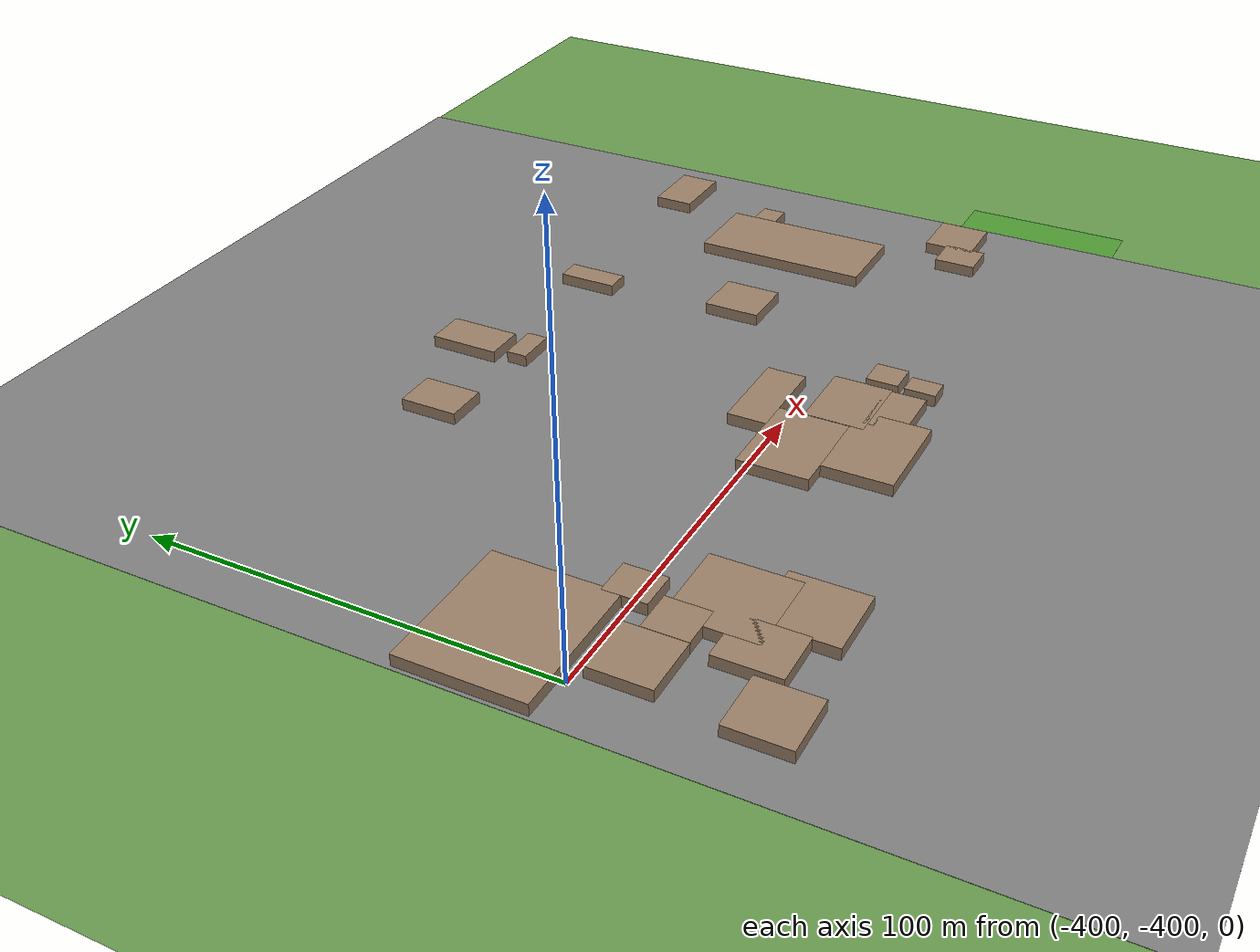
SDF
<sdf version="1.9">
 <world name="kimje_farmland">
  <model name="ground_plane">
   <static>true</static>
   <link name="link">
    <collision name="collision">
     <geometry><plane><normal>0 0 1</normal><size>2000 2000</size></plane></geometry>
    </collision>
    <visual name="visual">
     <geometry><plane><normal>0 0 1</normal><size>2000 2000</size></plane></geometry>
     <material><ambient>0.4 0.6 0.3 1</ambient><diffuse>0.4 0.6 0.3 1</diffuse></material>
    </visual>
   </link>
  </model>
  <model name="osm_168">
   <static>true</static>
   <pose>-297.12 -324.64 0.040 0 0 0</pose>
   <link name="link">
    <collision name="collision"><geometry><box><size>229.44 869.35 0.080</size></box></geometry></collision>
    <visual name="visual">
     <geometry><box><size>229.44 869.35 0.080</size></box></geometry>
     <material><ambient>0.5 0.5 0.5 1</ambient><diffuse>0.5 0.5 0.5 1</diffuse></material>
    </visual>
   </link>
  </model>
  <model name="osm_695">
   <static>true</static>
   <pose>-392.92 -383.28 1.500 0 0 0</pose>
   <link name="link">
    <collision name="collision"><geometry><box><size>36.00 30.48 3.000</size></box></geometry></collision>
    <visual name="visual">
     <geometry><box><size>36.00 30.48 3.000</size></box></geometry>
     <material><ambient>0.6 0.5 0.4 1</ambient><diffuse>0.6 0.5 0.4 1</diffuse></material>
    </visual>
   </link>
  </model>
  <model name="osm_716">
   <static>true</static>
   <pose>-389.92 -409.60 1.500 0 0 0</pose>
   <link name="link">
    <collision name="collision"><geometry><box><size>14.85 14.93 3.000</size></box></geometry></collision>
    <visual name="visual">
     <geometry><box><size>14.85 14.93 3.000</size></box></geometry>
     <material><ambient>0.6 0.5 0.4 1</ambient><diffuse>0.6 0.5 0.4 1</diffuse></material>
    </visual>
   </link>
  </model>
  <model name="osm_718">
   <static>true</static>
   <pose>-392.61 -438.90 1.500 0 0 0</pose>
   <link name="link">
    <collision name="collision"><geometry><box><size>14.83 14.95 3.000</size></box></geometry></collision>
    <visual name="visual">
     <geometry><box><size>14.83 14.95 3.000</size></box></geometry>
     <material><ambient>0.6 0.5 0.4 1</ambient><diffuse>0.6 0.5 0.4 1</diffuse></material>
    </visual>
   </link>
  </model>
  <model name="osm_733">
   <static>true</static>
   <pose>-329.73 -325.42 1.500 0 0 0</pose>
   <link name="link">
    <collision name="collision"><geometry><box><size>10.65 14.53 3.000</size></box></geometry></collision>
    <visual name="visual">
     <geometry><box><size>10.65 14.53 3.000</size></box></geometry>
     <material><ambient>0.6 0.5 0.4 1</ambient><diffuse>0.6 0.5 0.4 1</diffuse></material>
    </visual>
   </link>
  </model>
  <model name="osm_736">
   <static>true</static>
   <pose>-301.90 -317.08 1.500 0 0 0</pose>
   <link name="link">
    <collision name="collision"><geometry><box><size>10.11 17.50 3.000</size></box></geometry></collision>
    <visual name="visual">
     <geometry><box><size>10.11 17.50 3.000</size></box></geometry>
     <material><ambient>0.6 0.5 0.4 1</ambient><diffuse>0.6 0.5 0.4 1</diffuse></material>
    </visual>
   </link>
  </model>
  <model name="osm_737">
   <static>true</static>
   <pose>-300.04 -331.14 1.500 0 0 0</pose>
   <link name="link">
    <collision name="collision"><geometry><box><size>10.21 5.29 3.000</size></box></geometry></collision>
    <visual name="visual">
     <geometry><box><size>10.21 5.29 3.000</size></box></geometry>
     <material><ambient>0.6 0.5 0.4 1</ambient><diffuse>0.6 0.5 0.4 1</diffuse></material>
    </visual>
   </link>
  </model>
  <model name="osm_745">
   <static>true</static>
   <pose>-260.58 -327.66 1.500 0 0 0</pose>
   <link name="link">
    <collision name="collision"><geometry><box><size>6.35 14.93 3.000</size></box></geometry></collision>
    <visual name="visual">
     <geometry><box><size>6.35 14.93 3.000</size></box></geometry>
     <material><ambient>0.6 0.5 0.4 1</ambient><diffuse>0.6 0.5 0.4 1</diffuse></material>
    </visual>
   </link>
  </model>
  <model name="osm_762">
   <static>true</static>
   <pose>-201.12 -325.95 1.500 0 0 0</pose>
   <link name="link">
    <collision name="collision"><geometry><box><size>17.20 10.41 3.000</size></box></geometry></collision>
    <visual name="visual">
     <geometry><box><size>17.20 10.41 3.000</size></box></geometry>
     <material><ambient>0.6 0.5 0.4 1</ambient><diffuse>0.6 0.5 0.4 1</diffuse></material>
    </visual>
   </link>
  </model>
  <model name="osm_817">
   <static>true</static>
   <pose>-207.87 -354.67 1.500 0 0 0</pose>
   <link name="link">
    <collision name="collision"><geometry><box><size>10.49 6.21 3.000</size></box></geometry></collision>
    <visual name="visual">
     <geometry><box><size>10.49 6.21 3.000</size></box></geometry>
     <material><ambient>0.6 0.5 0.4 1</ambient><diffuse>0.6 0.5 0.4 1</diffuse></material>
    </visual>
   </link>
  </model>
  <model name="osm_818">
   <static>true</static>
   <pose>-219.56 -368.08 1.500 0 0 0</pose>
   <link name="link">
    <collision name="collision"><geometry><box><size>21.05 44.85 3.000</size></box></geometry></collision>
    <visual name="visual">
     <geometry><box><size>21.05 44.85 3.000</size></box></geometry>
     <material><ambient>0.6 0.5 0.4 1</ambient><diffuse>0.6 0.5 0.4 1</diffuse></material>
    </visual>
   </link>
  </model>
  <model name="osm_819">
   <static>true</static>
   <pose>-254.19 -368.42 1.500 0 0 0</pose>
   <link name="link">
    <collision name="collision"><geometry><box><size>13.61 14.37 3.000</size></box></geometry></collision>
    <visual name="visual">
     <geometry><box><size>13.61 14.37 3.000</size></box></geometry>
     <material><ambient>0.6 0.5 0.4 1</ambient><diffuse>0.6 0.5 0.4 1</diffuse></material>
    </visual>
   </link>
  </model>
  <model name="osm_820">
   <static>true</static>
   <pose>-294.58 -393.59 1.500 0 0 0</pose>
   <link name="link">
    <collision name="collision"><geometry><box><size>23.09 9.81 3.000</size></box></geometry></collision>
    <visual name="visual">
     <geometry><box><size>23.09 9.81 3.000</size></box></geometry>
     <material><ambient>0.6 0.5 0.4 1</ambient><diffuse>0.6 0.5 0.4 1</diffuse></material>
    </visual>
   </link>
  </model>
  <model name="osm_821">
   <static>true</static>
   <pose>-371.14 -399.29 1.500 0 0 0</pose>
   <link name="link">
    <collision name="collision"><geometry><box><size>9.50 10.53 3.000</size></box></geometry></collision>
    <visual name="visual">
     <geometry><box><size>9.50 10.53 3.000</size></box></geometry>
     <material><ambient>0.6 0.5 0.4 1</ambient><diffuse>0.6 0.5 0.4 1</diffuse></material>
    </visual>
   </link>
  </model>
  <model name="osm_822">
   <static>true</static>
   <pose>-377.22 -411.61 1.500 0 0 0</pose>
   <link name="link">
    <collision name="collision"><geometry><box><size>10.46 10.83 3.000</size></box></geometry></collision>
    <visual name="visual">
     <geometry><box><size>10.46 10.83 3.000</size></box></geometry>
     <material><ambient>0.6 0.5 0.4 1</ambient><diffuse>0.6 0.5 0.4 1</diffuse></material>
    </visual>
   </link>
  </model>
  <model name="osm_823">
   <static>true</static>
   <pose>-366.35 -418.75 1.500 0 0 0</pose>
   <link name="link">
    <collision name="collision"><geometry><box><size>21.32 21.31 3.000</size></box></geometry></collision>
    <visual name="visual">
     <geometry><box><size>21.32 21.31 3.000</size></box></geometry>
     <material><ambient>0.6 0.5 0.4 1</ambient><diffuse>0.6 0.5 0.4 1</diffuse></material>
    </visual>
   </link>
  </model>
  <model name="osm_824">
   <static>true</static>
   <pose>-377.09 -429.41 1.500 0 0 0</pose>
   <link name="link">
    <collision name="collision"><geometry><box><size>13.48 15.66 3.000</size></box></geometry></collision>
    <visual name="visual">
     <geometry><box><size>13.48 15.66 3.000</size></box></geometry>
     <material><ambient>0.6 0.5 0.4 1</ambient><diffuse>0.6 0.5 0.4 1</diffuse></material>
    </visual>
   </link>
  </model>
  <model name="osm_826">
   <static>true</static>
   <pose>-362.28 -434.08 1.500 0 0 0</pose>
   <link name="link">
    <collision name="collision"><geometry><box><size>17.43 18.52 3.000</size></box></geometry></collision>
    <visual name="visual">
     <geometry><box><size>17.43 18.52 3.000</size></box></geometry>
     <material><ambient>0.6 0.5 0.4 1</ambient><diffuse>0.6 0.5 0.4 1</diffuse></material>
    </visual>
   </link>
  </model>
  <model name="osm_830">
   <static>true</static>
   <pose>-310.49 -407.20 1.500 0 0 0</pose>
   <link name="link">
    <collision name="collision"><geometry><box><size>23.97 17.62 3.000</size></box></geometry></collision>
    <visual name="visual">
     <geometry><box><size>23.97 17.62 3.000</size></box></geometry>
     <material><ambient>0.6 0.5 0.4 1</ambient><diffuse>0.6 0.5 0.4 1</diffuse></material>
    </visual>
   </link>
  </model>
  <model name="osm_831">
   <static>true</static>
   <pose>-288.90 -411.93 1.500 0 0 0</pose>
   <link name="link">
    <collision name="collision"><geometry><box><size>18.91 14.59 3.000</size></box></geometry></collision>
    <visual name="visual">
     <geometry><box><size>18.91 14.59 3.000</size></box></geometry>
     <material><ambient>0.6 0.5 0.4 1</ambient><diffuse>0.6 0.5 0.4 1</diffuse></material>
    </visual>
   </link>
  </model>
  <model name="osm_832">
   <static>true</static>
   <pose>-303.78 -424.54 1.500 0 0 0</pose>
   <link name="link">
    <collision name="collision"><geometry><box><size>24.68 17.23 3.000</size></box></geometry></collision>
    <visual name="visual">
     <geometry><box><size>24.68 17.23 3.000</size></box></geometry>
     <material><ambient>0.6 0.5 0.4 1</ambient><diffuse>0.6 0.5 0.4 1</diffuse></material>
    </visual>
   </link>
  </model>
  <model name="osm_833">
   <static>true</static>
   <pose>-273.26 -415.63 1.500 0 0 0</pose>
   <link name="link">
    <collision name="collision"><geometry><box><size>7.69 8.03 3.000</size></box></geometry></collision>
    <visual name="visual">
     <geometry><box><size>7.69 8.03 3.000</size></box></geometry>
     <material><ambient>0.6 0.5 0.4 1</ambient><diffuse>0.6 0.5 0.4 1</diffuse></material>
    </visual>
   </link>
  </model>
  <model name="osm_834">
   <static>true</static>
   <pose>-274.46 -425.19 1.500 0 0 0</pose>
   <link name="link">
    <collision name="collision"><geometry><box><size>5.76 7.79 3.000</size></box></geometry></collision>
    <visual name="visual">
     <geometry><box><size>5.76 7.79 3.000</size></box></geometry>
     <material><ambient>0.6 0.5 0.4 1</ambient><diffuse>0.6 0.5 0.4 1</diffuse></material>
    </visual>
   </link>
  </model>
  <model name="osm_835">
   <static>true</static>
   <pose>-206.01 -411.10 1.500 0 0 0</pose>
   <link name="link">
    <collision name="collision"><geometry><box><size>9.37 10.60 3.000</size></box></geometry></collision>
    <visual name="visual">
     <geometry><box><size>9.37 10.60 3.000</size></box></geometry>
     <material><ambient>0.6 0.5 0.4 1</ambient><diffuse>0.6 0.5 0.4 1</diffuse></material>
    </visual>
   </link>
  </model>
  <model name="osm_836">
   <static>true</static>
   <pose>-195.31 -406.65 1.500 0 0 0</pose>
   <link name="link">
    <collision name="collision"><geometry><box><size>14.06 12.85 3.000</size></box></geometry></collision>
    <visual name="visual">
     <geometry><box><size>14.06 12.85 3.000</size></box></geometry>
     <material><ambient>0.6 0.5 0.4 1</ambient><diffuse>0.6 0.5 0.4 1</diffuse></material>
    </visual>
   </link>
  </model>
  <model name="osm_870">
   <static>true</static>
   <pose>-287.77 -422.99 1.500 0 0 0</pose>
   <link name="link">
    <collision name="collision"><geometry><box><size>15.70 9.70 3.000</size></box></geometry></collision>
    <visual name="visual">
     <geometry><box><size>15.70 9.70 3.000</size></box></geometry>
     <material><ambient>0.6 0.5 0.4 1</ambient><diffuse>0.6 0.5 0.4 1</diffuse></material>
    </visual>
   </link>
  </model>
  <model name="osm_944">
   <static>true</static>
   <pose>-216.48 -425.49 0.025 0 0 0</pose>
   <link name="link">
    <collision name="collision"><geometry><box><size>92.06 43.10 0.050</size></box></geometry></collision>
    <visual name="visual">
     <geometry><box><size>92.06 43.10 0.050</size></box></geometry>
     <material><ambient>0.3 0.6 0.2 1</ambient><diffuse>0.3 0.6 0.2 1</diffuse></material>
    </visual>
   </link>
  </model>
 </world>
</sdf>
